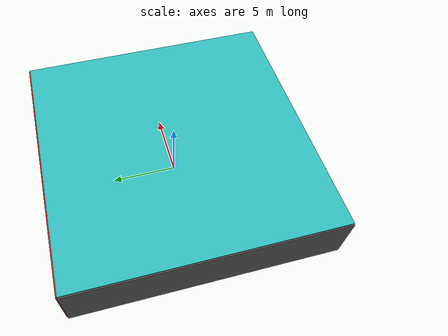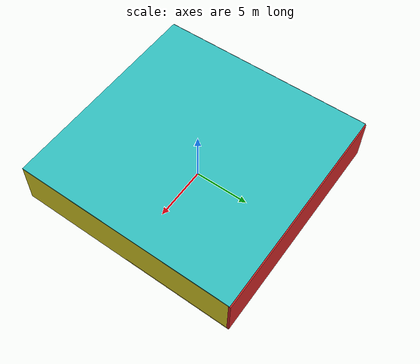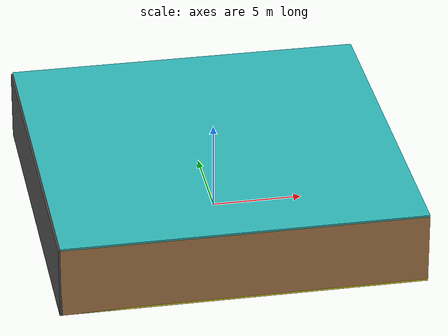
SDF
<sdf version="1.4">
 <world name="default">
  <physics type="ode">
   <max_step_size>0.001</max_step_size>
   <real_time_factor>1</real_time_factor>
   <real_time_update_rate>1000</real_time_update_rate>
   <gravity>0 0 -9.8</gravity>
  </physics>
  <scene><ambient>0.4 0.4 0.4 1</ambient><background>0.7 0.7 0.7 1</background><shadows>1</shadows></scene>
  <model name="Surrounding">
   <static>1</static>
   <link name="Ceiling">
    <collision name="Ceiling_Collision"><geometry><box><size>20 20 0.1</size></box></geometry></collision>
    <visual name="Ceiling_Visual">
     <geometry><box><size>20 20 0.1</size></box></geometry>
     <material>
      <script>
       <uri>file://media/materials/scripts/gazebo.material</uri>
       <name>Gazebo/TurquoiseGlowOutline</name>
      </script>
     </material>
    </visual>
    <pose>0 0 4.05 0 0 0</pose>
   </link>
   <link name="Wall_South">
    <collision name="Wall_South_Collision">
     <geometry><box><size>20 0 4</size></box></geometry>
     <pose>0 0 2 0 -0 0</pose>
    </collision>
    <visual name="Wall_South_Visual">
     <pose>0 0 2 0 -0 0</pose>
     <geometry><box><size>20 0 4</size></box></geometry>
     <material>
      <script><uri>file://media/materials/scripts/gazebo.material</uri><name>Gazebo/Wood</name></script>
     </material>
    </visual>
    <velocity_decay><linear>0</linear><angular>0</angular></velocity_decay>
    <pose>0 -10 0 0 -0 0</pose>
   </link>
   <link name="Wall_East">
    <collision name="Wall_21_Collision">
     <geometry><box><size>20 0 4</size></box></geometry>
     <pose>0 0 2 0 -0 0</pose>
    </collision>
    <visual name="Wall_21_Visual">
     <pose>0 0 2 0 -0 0</pose>
     <geometry><box><size>20 0 4</size></box></geometry>
     <material>
      <script><uri>file://media/materials/scripts/gazebo.material</uri><name>Gazebo/YellowGlow</name></script>
     </material>
    </visual>
    <velocity_decay><linear>0</linear><angular>0</angular></velocity_decay>
    <pose>10 0 0 0 -0 1.5708</pose>
   </link>
   <link name="Wall_North">
    <collision name="Wall_22_Collision">
     <geometry><box><size>20 0.2 4</size></box></geometry>
     <pose>0 0 2 0 -0 0</pose>
    </collision>
    <visual name="Wall_22_Visual">
     <pose>0 0 2 0 -0 0</pose>
     <geometry><box><size>20 0.2 4</size></box></geometry>
     <material>
      <script><uri>file://media/materials/scripts/gazebo.material</uri><name>Gazebo/RedGlow</name></script>
     </material>
    </visual>
    <velocity_decay><linear>0</linear><angular>0</angular></velocity_decay>
    <pose>0 10 0 0 -0 0</pose>
   </link>
   <link name="Wall_West">
    <collision name="Wall_23_Collision">
     <geometry><box><size>20 0.2 4</size></box></geometry>
     <pose>0 0 2 0 -0 0</pose>
    </collision>
    <visual name="Wall_23_Visual">
     <pose>0 0 2 0 -0 0</pose>
     <geometry><box><size>20 0.2 4</size></box></geometry>
     <material>
      <script><uri>file://media/materials/scripts/gazebo.material</uri><name>Gazebo/DarkGrey</name></script>
     </material>
    </visual>
    <velocity_decay><linear>0</linear><angular>0</angular></velocity_decay>
    <pose>-10 0 0 0 0 -1.5708</pose>
   </link>
   <link name="Ground_link">
    <collision name="collision">
     <pose>0 0 .05 0 -0 0</pose>
     <geometry><box><size>20 20 0.1</size></box></geometry>
    </collision>
    <visual name="visual">
     <pose>0 0 .05 0 -0 0</pose>
     <geometry><box><size>20 20 0.1</size></box></geometry>
     <material>
      <script><uri>file://media/materials/scripts/gazebo.material</uri><name>Gazebo/Yellow</name></script>
     </material>
    </visual>
   </link>
   <static>1</static>
  </model>
  <spherical_coordinates>
   <surface_model>EARTH_WGS84</surface_model>
   <latitude_deg>0</latitude_deg>
   <longitude_deg>0</longitude_deg>
   <elevation>0</elevation>
   <heading_deg>0</heading_deg>
  </spherical_coordinates>
  <light name="lightball_0" type="diffuse">
   <diffuse>0.8 0.8 0.8 1</diffuse>
   <specular>0.2 0.2 0.2 1</specular>
   <attenuation>
    <range>100</range>
    <constant>0.7</constant>
    <linear>0.01</linear>
    <quadratic>0.001</quadratic>
   </attenuation>
   <direction>-0.5 0.1 -0.9</direction>
   <pose>-3.65417453431 -6.75032748619 0.595907477416 0 0 0</pose>
  </light>
  <light name="lightball_1" type="diffuse">
   <diffuse>0.8 0.8 0.8 1</diffuse>
   <specular>0.2 0.2 0.2 1</specular>
   <attenuation>
    <range>100</range>
    <constant>0.7</constant>
    <linear>0.01</linear>
    <quadratic>0.001</quadratic>
   </attenuation>
   <direction>-0.5 0.1 -0.9</direction>
   <pose>1.65109728172 0.840468725383 2.04883507586 0 0 0</pose>
  </light>
  <light name="lightball_2" type="diffuse">
   <diffuse>0.8 0.8 0.8 1</diffuse>
   <specular>0.2 0.2 0.2 1</specular>
   <attenuation>
    <range>100</range>
    <constant>0.7</constant>
    <linear>0.01</linear>
    <quadratic>0.001</quadratic>
   </attenuation>
   <direction>-0.5 0.1 -0.9</direction>
   <pose>-7.19009939004 -6.16150866629 2.60983985288 0 0 0</pose>
  </light>
  <include><uri>model://cabinet</uri><pose>-5.0190663553 -4.681382315 0 0 0 0.119410351615</pose></include>
  <include><uri>model://cabinet</uri><pose>-2.27146451241 -3.85898224033 0 0 0 0.167679232335</pose></include>
  <include><uri>model://table</uri><pose>-0.917570945772 1.53686910603 0 0 0 2.15886944169</pose></include>
  <include>
   <uri>model://construction_cone</uri>
   <pose>1.42548320019 -1.7295284912 0 0 0 1.07669359907</pose>
  </include>
  <include>
   <uri>model://construction_cone</uri>
   <pose>5.00364491047 -7.17334104979 0 0 0 0.964757253584</pose>
  </include>
 </world>
</sdf>

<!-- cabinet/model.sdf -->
<sdf version="1.5">
  <model name="cabinet">
    <static>true</static>
    <link name="cabinet_bottom_plate">
      <inertial>
        <pose>0 0 -1 0 0 0</pose>
        <inertia>
          <ixx>2.050000</ixx>
          <ixy>0</ixy>
          <ixz>0</ixz>
          <iyy>2.050000</iyy>
          <iyz>0</iyz>
          <izz>2.050000</izz>
        </inertia>
        <mass>25.000000</mass>
      </inertial>
      <collision name="cabinet_bottom_plate_geom">
        <pose>0 0 0.010000 0 0 0</pose>
        <geometry>
          <box>
            <size>0.450000 0.450000 0.020000</size>
          </box>
        </geometry>
      </collision>
      <visual name="cabinet_bottom_plate_geom_visual">
        <pose>0 0 0.010000 0 0 0</pose>
        <geometry>
          <box>
            <size>0.450000 0.450000 0.020000</size>
          </box>
        </geometry>
        <material>
          <script>
            <uri>model://media/materials/scripts/gazebo.material</uri>
            <name>Gazebo/Wood</name>
          </script>
        </material>
      </visual>
      <collision name="cabinet_bottom_plate_geom_cabinet_back_plate">
        <pose>0.235000 0 0.510000 0 0 0</pose>
        <geometry>
          <box>
            <size>0.020000 0.450000 1.020000</size>
          </box>
        </geometry>
      </collision>
      <visual name="cabinet_bottom_plate_geom_cabinet_back_plate_visual">
        <pose>0.235000 0 0.510000 0 0 0</pose>
        <geometry>
          <box>
            <size>0.020000 0.450000 1.020000</size>
          </box>
        </geometry>
        <material>
          <script>
            <uri>model://media/materials/scripts/gazebo.material</uri>
            <name>Gazebo/Wood</name>
          </script>
        </material>
      </visual>
      <collision name="cabinet_bottom_plate_geom_cabinet_left_plate">
        <pose>0 0.235000 0.510000 0 0 0</pose>
        <geometry>
          <box>
            <size>0.450000 0.020000 1.020000</size>
          </box>
        </geometry>
      </collision>
      <visual name="cabinet_bottom_plate_geom_cabinet_left_plate_visual">
        <pose>0 0.235000 0.510000 0 0 0</pose>
        <geometry>
          <box>
            <size>0.450000 0.020000 1.020000</size>
          </box>
        </geometry>
        <material>
          <script>
            <uri>model://media/materials/scripts/gazebo.material</uri>
            <name>Gazebo/Wood</name>
          </script>
        </material>
      </visual>
      <collision name="cabinet_bottom_plate_geom_cabinet_middle_plate">
        <pose>0 0 0.510000 0 0 0</pose>
        <geometry>
          <box>
            <size>0.450000 0.450000 0.020000</size>
          </box>
        </geometry>
      </collision>
      <visual name="cabinet_bottom_plate_geom_cabinet_middle_plate_visual">
        <pose>0 0 0.510000 0 0 0</pose>
        <geometry>
          <box>
            <size>0.450000 0.450000 0.020000</size>
          </box>
        </geometry>
        <material>
          <script>
            <uri>model://media/materials/scripts/gazebo.material</uri>
            <name>Gazebo/Wood</name>
          </script>
        </material>
      </visual>
      <collision name="cabinet_bottom_plate_geom_cabinet_right_plate">
        <pose>0 -0.235000 0.510000 0 0 0</pose>
        <geometry>
          <box>
            <size>0.450000 0.020000 1.020000</size>
          </box>
        </geometry>
      </collision>
      <visual name="cabinet_bottom_plate_geom_cabinet_right_plate_visual">
        <pose>0 -0.235000 0.510000 0 0 0</pose>
        <geometry>
          <box>
            <size>0.450000 0.020000 1.020000</size>
          </box>
        </geometry>
        <material>
          <script>
            <uri>model://media/materials/scripts/gazebo.material</uri>
            <name>Gazebo/Wood</name>
          </script>
        </material>
      </visual>
      <collision name="cabinet_bottom_plate_geom_cabinet_top_plate">
        <pose>0 0 1.010000 0 0 0</pose>
        <geometry>
          <box>
            <size>0.450000 0.450000 0.020000</size>
          </box>
        </geometry>
      </collision>
      <visual name="cabinet_bottom_plate_geom_cabinet_top_plate_visual">
        <pose>0 0 1.010000 0 0 0</pose>
        <geometry>
          <box>
            <size>0.450000 0.450000 0.020000</size>
          </box>
        </geometry>
        <material>
          <script>
            <uri>model://media/materials/scripts/gazebo.material</uri>
            <name>Gazebo/Wood</name>
          </script>
        </material>
      </visual>
    </link>
  </model>
</sdf>

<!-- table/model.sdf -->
<sdf version="1.5">
  <model name="table">
    <static>true</static>
    <link name="link">
      <collision name="surface">
        <pose>0 0 1.0 0 0 0</pose>
        <geometry>
          <box>
            <size>1.5 0.8 0.03</size>
          </box>
        </geometry>
        <surface>
          <friction>
            <ode>
              <mu>0.6</mu>
              <mu2>0.6</mu2>
            </ode>
          </friction>
        </surface>
      </collision>
      <visual name="visual1">
        <pose>0 0 1.0 0 0 0</pose>
        <geometry>
          <box>
            <size>1.5 0.8 0.03</size>
          </box>
        </geometry>
        <material>
          <script>
            <uri>model://media/materials/scripts/gazebo.material</uri>
            <name>Gazebo/Wood</name>
          </script>
        </material>
      </visual>
      <collision name="front_left_leg">
        <pose>0.68 0.38 0.5 0 0 0</pose>
        <geometry>
          <cylinder>
            <radius>0.02</radius>
            <length>1.0</length>
          </cylinder>
        </geometry>
      </collision>
      <visual name="front_left_leg">
        <pose>0.68 0.38 0.5 0 0 0</pose>
        <geometry>
          <cylinder>
            <radius>0.02</radius>
            <length>1.0</length>
          </cylinder>
        </geometry>
        <material>
          <script>
            <uri>model://media/materials/scripts/gazebo.material</uri>
            <name>Gazebo/Grey</name>
          </script>
        </material>
      </visual>
      <collision name="front_right_leg">
        <pose>0.68 -0.38 0.5 0 0 0</pose>
        <geometry>
          <cylinder>
            <radius>0.02</radius>
            <length>1.0</length>
          </cylinder>
        </geometry>
      </collision>
      <visual name="front_right_leg">
        <pose>0.68 -0.38 0.5 0 0 0</pose>
        <geometry>
          <cylinder>
            <radius>0.02</radius>
            <length>1.0</length>
          </cylinder>
        </geometry>
        <material>
          <script>
            <uri>model://media/materials/scripts/gazebo.material</uri>
            <name>Gazebo/Grey</name>
          </script>
        </material>
      </visual>
      <collision name="back_right_leg">
        <pose>-0.68 -0.38 0.5 0 0 0</pose>
        <geometry>
          <cylinder>
            <radius>0.02</radius>
            <length>1.0</length>
          </cylinder>
        </geometry>
      </collision>
      <visual name="back_right_leg">
        <pose>-0.68 -0.38 0.5 0 0 0</pose>
        <geometry>
          <cylinder>
            <radius>0.02</radius>
            <length>1.0</length>
          </cylinder>
        </geometry>
        <material>
          <script>
            <uri>model://media/materials/scripts/gazebo.material</uri>
            <name>Gazebo/Grey</name>
          </script>
        </material>
      </visual>
      <collision name="back_left_leg">
        <pose>-0.68 0.38 0.5 0 0 0</pose>
        <geometry>
          <cylinder>
            <radius>0.02</radius>
            <length>1.0</length>
          </cylinder>
        </geometry>
      </collision>
      <visual name="back_left_leg">
        <pose>-0.68 0.38 0.5 0 0 0</pose>
        <geometry>
          <cylinder>
            <radius>0.02</radius>
            <length>1.0</length>
          </cylinder>
        </geometry>
        <material>
          <script>
            <uri>model://media/materials/scripts/gazebo.material</uri>
            <name>Gazebo/Grey</name>
          </script>
        </material>
      </visual>
    </link>
  </model>
</sdf>

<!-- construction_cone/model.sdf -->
<sdf version="1.5">
  <model name="Construction Cone">
    <link name="link">
      <collision name="collision">
        <geometry>
          <mesh>
            <scale>10 10 10</scale>
            <uri>file://isr-testbed/construction_cone/meshes/construction_cone.dae</uri>
          </mesh>
        </geometry>
      </collision>
      <visual name="visual">
        <geometry>
          <mesh>
            <scale>10 10 10</scale>
            <uri>file://isr-testbed/construction_cone/meshes/construction_cone.dae</uri>
          </mesh>
        </geometry>
      </visual>
    </link>
  </model>
</sdf>
